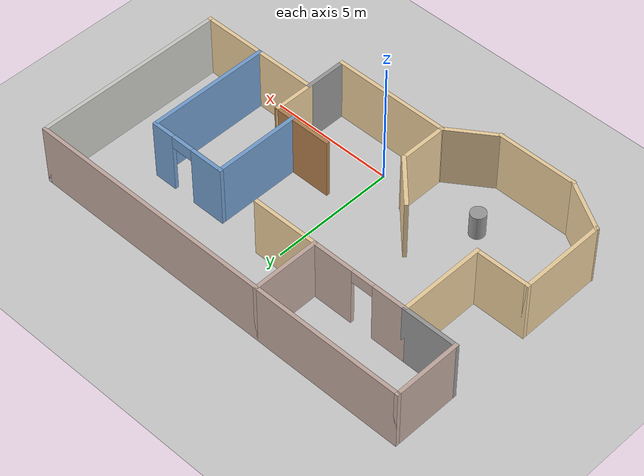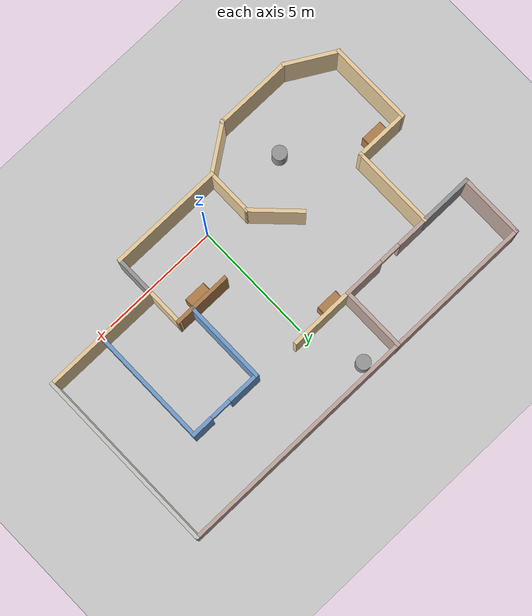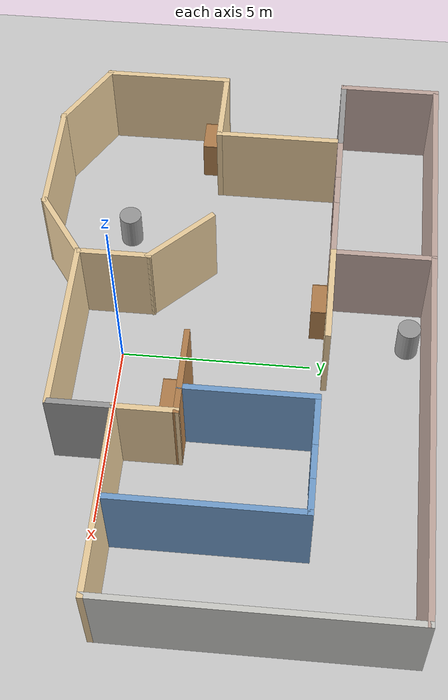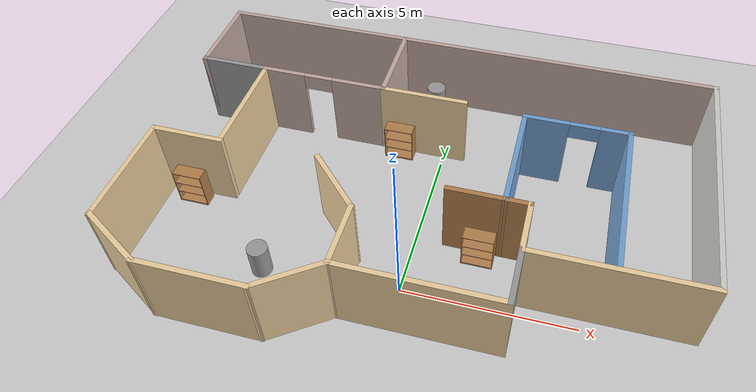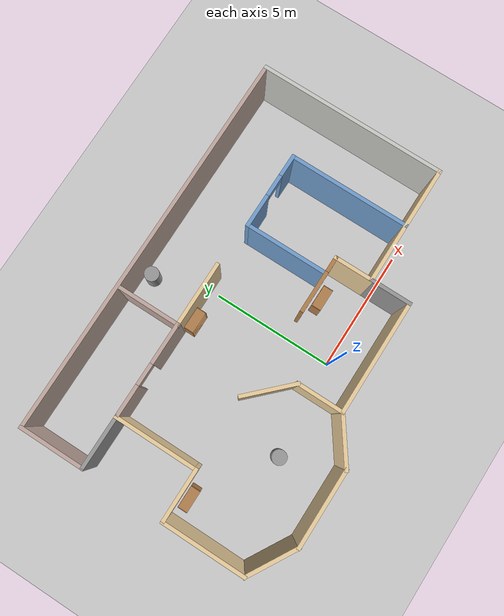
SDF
<sdf version="1.6">
 <world name="default">
  <light name="sun" type="directional">
   <pose>0 0 10 0 -0 0</pose>
   <diffuse>0.8 0.8 0.8 1</diffuse>
   <specular>0.2 0.2 0.2 1</specular>
   <attenuation>
    <range>1000</range>
    <constant>0.9</constant>
    <linear>0.01</linear>
    <quadratic>0.001</quadratic>
   </attenuation>
   <direction>-0.5 0.1 -0.9</direction>
   <spot><inner_angle>0</inner_angle><outer_angle>0</outer_angle><falloff>0</falloff></spot>
  </light>
  <model name="ground_plane">
   <static>1</static>
   <link name="link">
    <collision name="collision">
     <geometry><plane><normal>0 0 1</normal><size>100 100</size></plane></geometry>
     <surface>
      <contact><collide_bitmask>65535</collide_bitmask></contact>
      <friction><ode><mu>100</mu><mu2>50</mu2></ode></friction>
     </surface>
    </collision>
    <visual name="visual">
     <cast_shadows>0</cast_shadows>
     <geometry><plane><normal>0 0 1</normal><size>100 100</size></plane></geometry>
     <material>
      <script><uri>file://media/materials/scripts/gazebo.material</uri><name>Gazebo/Grey</name></script>
     </material>
    </visual>
   </link>
  </model>
  <gravity>0 0 -9.8</gravity>
  <magnetic_field>6e-06 2.3e-05 -4.2e-05</magnetic_field>
  <atmosphere type="adiabatic"/>
  <physics type="ode">
   <max_step_size>0.001</max_step_size>
   <real_time_factor>1</real_time_factor>
   <real_time_update_rate>1000</real_time_update_rate>
  </physics>
  <scene><ambient>0.4 0.4 0.4 1</ambient><background>0.7 0.7 0.7 1</background><shadows>1</shadows></scene>
  <spherical_coordinates>
   <surface_model>EARTH_WGS84</surface_model>
   <latitude_deg>0</latitude_deg>
   <longitude_deg>0</longitude_deg>
   <elevation>0</elevation>
   <heading_deg>0</heading_deg>
  </spherical_coordinates>
  <model name="house_pr3">
   <pose>-0.01373 2.81024 0 0 -0 0</pose>
   <link name="Wall_0">
    <pose>-3.93627 2.58976 0 0 -0 0</pose>
    <visual name="Wall_0_Visual_0">
     <pose>-1.32303 0 1.25 0 -0 0</pose>
     <geometry><box><size>1.40395 0.15 2.5</size></box></geometry>
     <material>
      <script><uri>file://media/materials/scripts/gazebo.material</uri><name>Gazebo/Grey</name></script>
      <ambient>0.760784 0.662745 0.627451 1</ambient>
     </material>
     <meta><layer>0</layer></meta>
    </visual>
    <collision name="Wall_0_Collision_0">
     <geometry><box><size>1.40395 0.15 2.5</size></box></geometry>
     <pose>-1.32303 0 1.25 0 -0 0</pose>
    </collision>
    <visual name="Wall_0_Visual_1">
     <pose>1.15197 0 1.25 0 -0 0</pose>
     <geometry><box><size>1.74605 0.15 2.5</size></box></geometry>
     <material>
      <script><uri>file://media/materials/scripts/gazebo.material</uri><name>Gazebo/Grey</name></script>
      <ambient>0.760784 0.662745 0.627451 1</ambient>
     </material>
     <meta><layer>0</layer></meta>
    </visual>
    <collision name="Wall_0_Collision_1">
     <geometry><box><size>1.74605 0.15 2.5</size></box></geometry>
     <pose>1.15197 0 1.25 0 -0 0</pose>
    </collision>
    <visual name="Wall_0_Visual_2">
     <pose>-0.171053 0 2.25 0 -0 0</pose>
     <geometry><box><size>0.9 0.15 0.5</size></box></geometry>
     <material>
      <script><uri>file://media/materials/scripts/gazebo.material</uri><name>Gazebo/Grey</name></script>
      <ambient>0.760784 0.662745 0.627451 1</ambient>
     </material>
     <meta><layer>0</layer></meta>
    </visual>
    <collision name="Wall_0_Collision_2">
     <geometry><box><size>0.9 0.15 0.5</size></box></geometry>
     <pose>-0.171053 0 2.25 0 -0 0</pose>
    </collision>
   </link>
   <link name="Wall_10">
    <collision name="Wall_10_Collision">
     <geometry><box><size>3.5 0.15 2.5</size></box></geometry>
     <pose>0 0 1.25 0 -0 0</pose>
    </collision>
    <visual name="Wall_10_Visual">
     <pose>0 0 1.25 0 -0 0</pose>
     <geometry><box><size>3.5 0.15 2.5</size></box></geometry>
     <material>
      <script><uri>file://media/materials/scripts/gazebo.material</uri><name>Gazebo/Grey</name></script>
      <ambient>0.921569 0.807843 0.615686 1</ambient>
     </material>
     <meta><layer>0</layer></meta>
    </visual>
    <pose>-7.98627 -2.43524 0 0 -0 -1.5708</pose>
   </link>
   <link name="Wall_11">
    <collision name="Wall_11_Collision">
     <geometry><box><size>2.25 0.15 2.5</size></box></geometry>
     <pose>0 0 1.25 0 -0 0</pose>
    </collision>
    <visual name="Wall_11_Visual">
     <pose>0 0 1.25 0 -0 0</pose>
     <geometry><box><size>2.25 0.15 2.5</size></box></geometry>
     <material>
      <script><uri>file://media/materials/scripts/gazebo.material</uri><name>Gazebo/Grey</name></script>
      <ambient>0.921569 0.807843 0.615686 1</ambient>
     </material>
     <meta><layer>0</layer></meta>
    </visual>
    <pose>-7.07695 -4.63524 0 0 -0 -0.523599</pose>
   </link>
   <link name="Wall_12">
    <collision name="Wall_12_Collision">
     <geometry><box><size>3.25 0.15 2.5</size></box></geometry>
     <pose>0 0 1.25 0 -0 0</pose>
    </collision>
    <visual name="Wall_12_Visual">
     <pose>0 0 1.25 0 -0 0</pose>
     <geometry><box><size>3.25 0.15 2.5</size></box></geometry>
     <material>
      <script><uri>file://media/materials/scripts/gazebo.material</uri><name>Gazebo/Grey</name></script>
      <ambient>0.921569 0.807843 0.615686 1</ambient>
     </material>
     <meta><layer>0</layer></meta>
    </visual>
    <pose>-4.61762 -5.16024 0 0 -0 0</pose>
   </link>
   <link name="Wall_14">
    <collision name="Wall_14_Collision">
     <geometry><box><size>2.75 0.15 2.5</size></box></geometry>
     <pose>0 0 1.25 0 -0 0</pose>
    </collision>
    <visual name="Wall_14_Visual">
     <pose>0 0 1.25 0 -0 0</pose>
     <geometry><box><size>2.75 0.15 2.5</size></box></geometry>
     <material>
      <script><uri>file://media/materials/scripts/gazebo.material</uri><name>Gazebo/Grey</name></script>
      <ambient>0.760784 0.662745 0.627451 1</ambient>
     </material>
     <meta><layer>0</layer></meta>
    </visual>
    <pose>-1.98627 3.88976 0 0 -0 1.5708</pose>
   </link>
   <link name="Wall_16">
    <collision name="Wall_16_Collision">
     <geometry><box><size>7.75 0.15 2.5</size></box></geometry>
     <pose>0 0 1.25 0 -0 0</pose>
    </collision>
    <visual name="Wall_16_Visual">
     <pose>0 0 1.25 0 -0 0</pose>
     <geometry><box><size>7.75 0.15 2.5</size></box></geometry>
     <material>
      <script><uri>file://media/materials/scripts/gazebo.material</uri><name>Gazebo/CeilingTiled</name></script>
      <ambient>1 1 1 1</ambient>
     </material>
     <meta><layer>0</layer></meta>
    </visual>
    <pose>8.01373 1.38976 0 0 -0 -1.5708</pose>
   </link>
   <link name="Wall_17">
    <collision name="Wall_17_Collision">
     <geometry><box><size>5 0.15 2.5</size></box></geometry>
     <pose>0 0 1.25 0 -0 0</pose>
    </collision>
    <visual name="Wall_17_Visual">
     <pose>0 0 1.25 0 -0 0</pose>
     <geometry><box><size>5 0.15 2.5</size></box></geometry>
     <material>
      <script><uri>file://media/materials/scripts/gazebo.material</uri><name>Gazebo/Grey</name></script>
      <ambient>0.921569 0.807843 0.615686 1</ambient>
     </material>
     <meta><layer>0</layer></meta>
    </visual>
    <pose>5.58873 -2.41024 0 0 -0 3.14159</pose>
   </link>
   <link name="Wall_18">
    <collision name="Wall_18_Collision">
     <geometry><box><size>1.75 0.15 2.5</size></box></geometry>
     <pose>0 0 1.25 0 -0 0</pose>
    </collision>
    <visual name="Wall_18_Visual">
     <pose>0 0 1.25 0 -0 0</pose>
     <geometry><box><size>1.75 0.15 2.5</size></box></geometry>
     <material>
      <script><uri>file://media/materials/scripts/gazebo.material</uri><name>Gazebo/Grey</name></script>
      <ambient>1 1 1 1</ambient>
     </material>
     <meta><layer>0</layer></meta>
    </visual>
    <pose>3.16373 -3.21024 0 0 -0 -1.5708</pose>
   </link>
   <link name="Wall_19">
    <collision name="Wall_19_Collision">
     <geometry><box><size>4.75 0.15 2.5</size></box></geometry>
     <pose>0 0 1.25 0 -0 0</pose>
    </collision>
    <visual name="Wall_19_Visual">
     <pose>0 0 1.25 0 -0 0</pose>
     <geometry><box><size>4.75 0.15 2.5</size></box></geometry>
     <material>
      <script><uri>file://media/materials/scripts/gazebo.material</uri><name>Gazebo/Grey</name></script>
      <ambient>0.921569 0.807843 0.615686 1</ambient>
     </material>
     <meta><layer>0</layer></meta>
    </visual>
    <pose>0.863726 -4.01024 0 0 -0 3.14159</pose>
   </link>
   <link name="Wall_2">
    <pose>4.02373 2.45476 0 0 -0 3.14159</pose>
    <visual name="Wall_2_Visual_0">
     <pose>-1.15224 0 1.25 0 -0 0</pose>
     <geometry><box><size>0.94552 0.15 2.5</size></box></geometry>
     <material>
      <script><uri>file://media/materials/scripts/gazebo.material</uri><name>Gazebo/Grey</name></script>
      <ambient>0.447059 0.623529 0.811765 1</ambient>
     </material>
     <meta><layer>0</layer></meta>
    </visual>
    <collision name="Wall_2_Collision_0">
     <geometry><box><size>0.94552 0.15 2.5</size></box></geometry>
     <pose>-1.15224 0 1.25 0 -0 0</pose>
    </collision>
    <visual name="Wall_2_Visual_1">
     <pose>0.92276 0 1.25 0 -0 0</pose>
     <geometry><box><size>1.40448 0.15 2.5</size></box></geometry>
     <material>
      <script><uri>file://media/materials/scripts/gazebo.material</uri><name>Gazebo/Grey</name></script>
      <ambient>0.447059 0.623529 0.811765 1</ambient>
     </material>
     <meta><layer>0</layer></meta>
    </visual>
    <collision name="Wall_2_Collision_1">
     <geometry><box><size>1.40448 0.15 2.5</size></box></geometry>
     <pose>0.92276 0 1.25 0 -0 0</pose>
    </collision>
    <visual name="Wall_2_Visual_2">
     <pose>-0.22948 0 2.25 0 -0 0</pose>
     <geometry><box><size>0.9 0.15 0.5</size></box></geometry>
     <material>
      <script><uri>file://media/materials/scripts/gazebo.material</uri><name>Gazebo/Grey</name></script>
      <ambient>0.447059 0.623529 0.811765 1</ambient>
     </material>
     <meta><layer>0</layer></meta>
    </visual>
    <collision name="Wall_2_Collision_2">
     <geometry><box><size>0.9 0.15 0.5</size></box></geometry>
     <pose>-0.22948 0 2.25 0 -0 0</pose>
    </collision>
   </link>
   <link name="Wall_20">
    <collision name="Wall_20_Collision">
     <geometry><box><size>2.14594 0.15 2.5</size></box></geometry>
     <pose>0 0 1.25 0 -0 0</pose>
    </collision>
    <visual name="Wall_20_Visual">
     <pose>0 0 1.25 0 -0 0</pose>
     <geometry><box><size>2.14594 0.15 2.5</size></box></geometry>
     <material>
      <script><uri>file://media/materials/scripts/gazebo.material</uri><name>Gazebo/Grey</name></script>
      <ambient>0.921569 0.807843 0.615686 1</ambient>
     </material>
     <meta><layer>0</layer></meta>
    </visual>
    <pose>-2.25195 -4.58524 0 0 -0 -2.52756</pose>
   </link>
   <link name="Wall_22">
    <collision name="Wall_22_Collision">
     <geometry><box><size>2 0.15 2.5</size></box></geometry>
     <pose>0 0 1.25 0 -0 0</pose>
    </collision>
    <visual name="Wall_22_Visual">
     <pose>0 0 1.25 0 -0 0</pose>
     <geometry><box><size>2 0.15 2.5</size></box></geometry>
     <material>
      <script><uri>file://media/materials/scripts/gazebo.material</uri><name>Gazebo/Grey</name></script>
      <ambient>0.921569 0.807843 0.615686 1</ambient>
     </material>
     <meta><layer>0</layer></meta>
    </visual>
    <pose>-1.43627 -3.08524 0 0 -0 1.5708</pose>
   </link>
   <link name="Wall_23">
    <collision name="Wall_23_Collision">
     <geometry><box><size>2.25 0.15 2.5</size></box></geometry>
     <pose>0 0 1.25 0 -0 0</pose>
    </collision>
    <visual name="Wall_23_Visual">
     <pose>0 0 1.25 0 -0 0</pose>
     <geometry><box><size>2.25 0.15 2.5</size></box></geometry>
     <material>
      <script><uri>file://media/materials/scripts/gazebo.material</uri><name>Gazebo/Grey</name></script>
      <ambient>0.921569 0.807843 0.615686 1</ambient>
     </material>
     <meta><layer>0</layer></meta>
    </visual>
    <pose>-2.17874 -1.41778 0 0 -0 2.35619</pose>
   </link>
   <link name="Wall_25">
    <collision name="Wall_25_Collision">
     <geometry><box><size>5 0.15 2.5</size></box></geometry>
     <pose>0 0 1.25 0 -0 0</pose>
    </collision>
    <visual name="Wall_25_Visual">
     <pose>0 0 1.25 0 -0 0</pose>
     <geometry><box><size>5 0.15 2.5</size></box></geometry>
     <material>
      <script><uri>file://media/materials/scripts/gazebo.material</uri><name>Gazebo/Grey</name></script>
      <ambient>0.447059 0.623529 0.811765 1</ambient>
     </material>
     <meta><layer>0</layer></meta>
    </visual>
    <pose>5.5739 0.029376 0 0 -0 1.5708</pose>
   </link>
   <link name="Wall_27">
    <collision name="Wall_27_Collision">
     <geometry><box><size>3.5 0.15 2.5</size></box></geometry>
     <pose>0 0 1.25 0 -0 0</pose>
    </collision>
    <visual name="Wall_27_Visual">
     <pose>0 0 1.25 0 -0 0</pose>
     <geometry><box><size>3.5 0.15 2.5</size></box></geometry>
     <material>
      <script><uri>file://media/materials/scripts/gazebo.material</uri><name>Gazebo/Grey</name></script>
      <ambient>0.447059 0.623529 0.811765 1</ambient>
     </material>
     <meta><layer>0</layer></meta>
    </visual>
    <pose>2.4739 0.779376 0 0 -0 -1.5708</pose>
   </link>
   <link name="Wall_28">
    <collision name="Wall_28_Collision">
     <geometry><box><size>0.839822 0.15 2.5</size></box></geometry>
     <pose>0 0 1.25 0 -0 0</pose>
    </collision>
    <visual name="Wall_28_Visual">
     <pose>0 0 1.25 0 -0 0</pose>
     <geometry><box><size>0.839822 0.15 2.5</size></box></geometry>
     <material>
      <script><uri>file://media/materials/scripts/gazebo.material</uri><name>Gazebo/Wood</name></script>
      <ambient>0.921569 0.807843 0.615686 1</ambient>
     </material>
     <meta><layer>0</layer></meta>
    </visual>
    <pose>2.81881 -0.895434 0 0 -0 0.000551</pose>
   </link>
   <link name="Wall_29">
    <collision name="Wall_29_Collision">
     <geometry><box><size>1.665 0.15 2.5</size></box></geometry>
     <pose>0 0 1.25 0 -0 0</pose>
    </collision>
    <visual name="Wall_29_Visual">
     <pose>0 0 1.25 0 -0 0</pose>
     <geometry><box><size>1.665 0.15 2.5</size></box></geometry>
     <material>
      <script><uri>file://media/materials/scripts/gazebo.material</uri><name>Gazebo/Grey</name></script>
      <ambient>0.921569 0.807843 0.615686 1</ambient>
     </material>
     <meta><layer>0</layer></meta>
    </visual>
    <pose>3.16373 -1.65274 0 0 -0 -1.5708</pose>
   </link>
   <link name="Wall_31">
    <collision name="Wall_31_Collision">
     <geometry><box><size>2.75 0.15 2.5</size></box></geometry>
     <pose>0 0 1.25 0 -0 0</pose>
    </collision>
    <visual name="Wall_31_Visual">
     <pose>0 0 1.25 0 -0 0</pose>
     <geometry><box><size>2.75 0.15 2.5</size></box></geometry>
     <material>
      <script><uri>file://media/materials/scripts/gazebo.material</uri><name>Gazebo/Grey</name></script>
      <ambient>0.921569 0.807843 0.615686 1</ambient>
     </material>
     <meta><layer>0</layer></meta>
    </visual>
    <pose>-0.686274 2.58976 0 0 -0 0</pose>
   </link>
   <link name="Wall_33">
    <collision name="Wall_33_Collision">
     <geometry><box><size>1.75 0.15 2.5</size></box></geometry>
     <pose>0 0 1.25 0 -0 0</pose>
    </collision>
    <visual name="Wall_33_Visual">
     <pose>0 0 1.25 0 -0 0</pose>
     <geometry><box><size>1.75 0.15 2.5</size></box></geometry>
     <material>
      <script><uri>file://media/materials/scripts/gazebo.material</uri><name>Gazebo/Wood</name></script>
      <ambient>0.921569 0.807843 0.615686 1</ambient>
     </material>
     <meta><layer>0</layer></meta>
    </visual>
    <pose>1.6739 -0.895624 0 0 -0 3.14159</pose>
   </link>
   <link name="Wall_4">
    <collision name="Wall_4_Collision">
     <geometry><box><size>16.15 0.15 2.5</size></box></geometry>
     <pose>0 0 1.25 0 -0 0</pose>
    </collision>
    <visual name="Wall_4_Visual">
     <pose>0 0 1.25 0 -0 0</pose>
     <geometry><box><size>16.15 0.15 2.5</size></box></geometry>
     <material>
      <script><uri>file://media/materials/scripts/gazebo.material</uri><name>Gazebo/Grey</name></script>
      <ambient>0.760784 0.662745 0.627451 1</ambient>
     </material>
     <meta><layer>0</layer></meta>
    </visual>
    <pose>0.013726 5.18976 0 0 -0 0</pose>
   </link>
   <link name="Wall_6">
    <collision name="Wall_6_Collision">
     <geometry><box><size>2.75 0.15 2.5</size></box></geometry>
     <pose>0 0 1.25 0 -0 0</pose>
    </collision>
    <visual name="Wall_6_Visual">
     <pose>0 0 1.25 0 -0 0</pose>
     <geometry><box><size>2.75 0.15 2.5</size></box></geometry>
     <material>
      <script><uri>file://media/materials/scripts/gazebo.material</uri><name>Gazebo/Grey</name></script>
      <ambient>0.760784 0.662745 0.627451 1</ambient>
     </material>
     <meta><layer>0</layer></meta>
    </visual>
    <pose>-7.98627 3.88976 0 0 -0 -1.5708</pose>
   </link>
   <link name="Wall_7">
    <collision name="Wall_7_Collision">
     <geometry><box><size>2.2503 0.15 2.5</size></box></geometry>
     <pose>0 0 1.25 0 -0 0</pose>
    </collision>
    <visual name="Wall_7_Visual">
     <pose>0 0 1.25 0 -0 0</pose>
     <geometry><box><size>2.2503 0.15 2.5</size></box></geometry>
     <material>
      <script><uri>file://media/materials/scripts/gazebo.material</uri><name>Gazebo/Grey</name></script>
      <ambient>1 1 1 1</ambient>
     </material>
     <meta><layer>0</layer></meta>
    </visual>
    <pose>-6.93627 2.58976 0 0 -0 0</pose>
   </link>
   <link name="Wall_8">
    <collision name="Wall_8_Collision">
     <geometry><box><size>3.5 0.15 2.5</size></box></geometry>
     <pose>0 0 1.25 0 -0 0</pose>
    </collision>
    <visual name="Wall_8_Visual">
     <pose>0 0 1.25 0 -0 0</pose>
     <geometry><box><size>3.5 0.15 2.5</size></box></geometry>
     <material>
      <script><uri>file://media/materials/scripts/gazebo.material</uri><name>Gazebo/Grey</name></script>
      <ambient>0.921569 0.807843 0.615686 1</ambient>
     </material>
     <meta><layer>0</layer></meta>
    </visual>
    <pose>-5.88627 0.914756 0 0 -0 -1.5708</pose>
   </link>
   <link name="Wall_9">
    <collision name="Wall_9_Collision">
     <geometry><box><size>2.25 0.15 2.5</size></box></geometry>
     <pose>0 0 1.25 0 -0 0</pose>
    </collision>
    <visual name="Wall_9_Visual">
     <pose>0 0 1.25 0 -0 0</pose>
     <geometry><box><size>2.25 0.15 2.5</size></box></geometry>
     <material>
      <script><uri>file://media/materials/scripts/gazebo.material</uri><name>Gazebo/Grey</name></script>
      <ambient>0.921569 0.807843 0.615686 1</ambient>
     </material>
     <meta><layer>0</layer></meta>
    </visual>
    <pose>-6.93627 -0.760244 0 0 -0 3.14159</pose>
   </link>
   <static>1</static>
  </model>
  <model name="bookshelf">
   <static>1</static>
   <link name="link">
    <inertial><mass>1</mass></inertial>
    <collision name="back">
     <pose>0 0.005 0.6 0 -0 0</pose>
     <geometry><box><size>0.9 0.01 1.2</size></box></geometry>
    </collision>
    <visual name="visual1">
     <pose>0 0.005 0.6 0 -0 0</pose>
     <geometry><box><size>0.9 0.01 1.2</size></box></geometry>
     <material>
      <script><uri>file://media/materials/scripts/gazebo.material</uri><name>Gazebo/Wood</name></script>
     </material>
    </visual>
    <collision name="left_side">
     <pose>0.45 -0.195 0.6 0 -0 0</pose>
     <geometry><box><size>0.02 0.4 1.2</size></box></geometry>
    </collision>
    <visual name="visual2">
     <pose>0.45 -0.195 0.6 0 -0 0</pose>
     <geometry><box><size>0.02 0.4 1.2</size></box></geometry>
     <material>
      <script><uri>file://media/materials/scripts/gazebo.material</uri><name>Gazebo/Wood</name></script>
     </material>
    </visual>
    <collision name="right_side">
     <pose>-0.45 -0.195 0.6 0 -0 0</pose>
     <geometry><box><size>0.02 0.4 1.2</size></box></geometry>
    </collision>
    <visual name="visual3">
     <pose>-0.45 -0.195 0.6 0 -0 0</pose>
     <geometry><box><size>0.02 0.4 1.2</size></box></geometry>
     <material>
      <script><uri>file://media/materials/scripts/gazebo.material</uri><name>Gazebo/Wood</name></script>
     </material>
    </visual>
    <collision name="bottom">
     <pose>0 -0.195 0.03 0 -0 0</pose>
     <geometry><box><size>0.88 0.4 0.06</size></box></geometry>
    </collision>
    <visual name="visual4">
     <pose>0 -0.195 0.03 0 -0 0</pose>
     <geometry><box><size>0.88 0.4 0.06</size></box></geometry>
     <material>
      <script><uri>file://media/materials/scripts/gazebo.material</uri><name>Gazebo/Wood</name></script>
     </material>
    </visual>
    <collision name="top">
     <pose>0 -0.195 1.19 0 -0 0</pose>
     <geometry><box><size>0.88 0.4 0.02</size></box></geometry>
    </collision>
    <visual name="visual5">
     <pose>0 -0.195 1.19 0 -0 0</pose>
     <geometry><box><size>0.88 0.4 0.02</size></box></geometry>
     <material>
      <script><uri>file://media/materials/scripts/gazebo.material</uri><name>Gazebo/Wood</name></script>
     </material>
    </visual>
    <collision name="low_shelf">
     <pose>0 -0.195 0.43 0 -0 0</pose>
     <geometry><box><size>0.88 0.4 0.02</size></box></geometry>
    </collision>
    <visual name="visual6">
     <pose>0 -0.195 0.43 0 -0 0</pose>
     <geometry><box><size>0.88 0.4 0.02</size></box></geometry>
     <material>
      <script><uri>file://media/materials/scripts/gazebo.material</uri><name>Gazebo/Wood</name></script>
     </material>
    </visual>
    <collision name="high_shelf">
     <pose>0 -0.195 0.8 0 -0 0</pose>
     <geometry><box><size>0.88 0.4 0.02</size></box></geometry>
    </collision>
    <visual name="visual7">
     <pose>0 -0.195 0.8 0 -0 0</pose>
     <geometry><box><size>0.88 0.4 0.02</size></box></geometry>
     <material>
      <script><uri>file://media/materials/scripts/gazebo.material</uri><name>Gazebo/Wood</name></script>
     </material>
    </visual>
   </link>
   <pose>1.90228 1.73392 0 0 -0 0</pose>
  </model>
  <model name="bookshelf_0">
   <static>1</static>
   <link name="link">
    <inertial><mass>1</mass></inertial>
    <collision name="back">
     <pose>0 0.005 0.6 0 -0 0</pose>
     <geometry><box><size>0.9 0.01 1.2</size></box></geometry>
    </collision>
    <visual name="visual1">
     <pose>0 0.005 0.6 0 -0 0</pose>
     <geometry><box><size>0.9 0.01 1.2</size></box></geometry>
     <material>
      <script><uri>file://media/materials/scripts/gazebo.material</uri><name>Gazebo/Wood</name></script>
     </material>
    </visual>
    <collision name="left_side">
     <pose>0.45 -0.195 0.6 0 -0 0</pose>
     <geometry><box><size>0.02 0.4 1.2</size></box></geometry>
    </collision>
    <visual name="visual2">
     <pose>0.45 -0.195 0.6 0 -0 0</pose>
     <geometry><box><size>0.02 0.4 1.2</size></box></geometry>
     <material>
      <script><uri>file://media/materials/scripts/gazebo.material</uri><name>Gazebo/Wood</name></script>
     </material>
    </visual>
    <collision name="right_side">
     <pose>-0.45 -0.195 0.6 0 -0 0</pose>
     <geometry><box><size>0.02 0.4 1.2</size></box></geometry>
    </collision>
    <visual name="visual3">
     <pose>-0.45 -0.195 0.6 0 -0 0</pose>
     <geometry><box><size>0.02 0.4 1.2</size></box></geometry>
     <material>
      <script><uri>file://media/materials/scripts/gazebo.material</uri><name>Gazebo/Wood</name></script>
     </material>
    </visual>
    <collision name="bottom">
     <pose>0 -0.195 0.03 0 -0 0</pose>
     <geometry><box><size>0.88 0.4 0.06</size></box></geometry>
    </collision>
    <visual name="visual4">
     <pose>0 -0.195 0.03 0 -0 0</pose>
     <geometry><box><size>0.88 0.4 0.06</size></box></geometry>
     <material>
      <script><uri>file://media/materials/scripts/gazebo.material</uri><name>Gazebo/Wood</name></script>
     </material>
    </visual>
    <collision name="top">
     <pose>0 -0.195 1.19 0 -0 0</pose>
     <geometry><box><size>0.88 0.4 0.02</size></box></geometry>
    </collision>
    <visual name="visual5">
     <pose>0 -0.195 1.19 0 -0 0</pose>
     <geometry><box><size>0.88 0.4 0.02</size></box></geometry>
     <material>
      <script><uri>file://media/materials/scripts/gazebo.material</uri><name>Gazebo/Wood</name></script>
     </material>
    </visual>
    <collision name="low_shelf">
     <pose>0 -0.195 0.43 0 -0 0</pose>
     <geometry><box><size>0.88 0.4 0.02</size></box></geometry>
    </collision>
    <visual name="visual6">
     <pose>0 -0.195 0.43 0 -0 0</pose>
     <geometry><box><size>0.88 0.4 0.02</size></box></geometry>
     <material>
      <script><uri>file://media/materials/scripts/gazebo.material</uri><name>Gazebo/Wood</name></script>
     </material>
    </visual>
    <collision name="high_shelf">
     <pose>0 -0.195 0.8 0 -0 0</pose>
     <geometry><box><size>0.88 0.4 0.02</size></box></geometry>
    </collision>
    <visual name="visual7">
     <pose>0 -0.195 0.8 0 -0 0</pose>
     <geometry><box><size>0.88 0.4 0.02</size></box></geometry>
     <material>
      <script><uri>file://media/materials/scripts/gazebo.material</uri><name>Gazebo/Wood</name></script>
     </material>
    </visual>
   </link>
   <pose>-7.02738 1.88752 0 0 -0 0</pose>
  </model>
  <model name="unit_cylinder">
   <link name="link">
    <inertial>
     <mass>1</mass>
     <inertia><ixx>0.145833</ixx><ixy>0</ixy><ixz>0</ixz><iyy>0.145833</iyy><iyz>0</iyz><izz>0.125</izz></inertia>
    </inertial>
    <visual name="visual">
     <geometry><cylinder><radius>0.3</radius><length>1</length></cylinder></geometry>
     <material>
      <script><name>Gazebo/Grey</name><uri>file://media/materials/scripts/gazebo.material</uri></script>
      <shader type="pixel"><normal_map>__default__</normal_map></shader>
      <ambient>0.3 0.3 0.3 1</ambient>
      <diffuse>0.7 0.7 0.7 1</diffuse>
      <specular>0.01 0.01 0.01 1</specular>
      <emissive>0 0 0 1</emissive>
     </material>
    </visual>
    <collision name="collision">
     <geometry><cylinder><radius>0.3</radius><length>1</length></cylinder></geometry>
     <surface>
      <friction>
       <ode><mu>1</mu><mu2>1</mu2><fdir1>0 0 0</fdir1><slip1>0</slip1><slip2>0</slip2></ode>
       <torsional>
        <coefficient>1</coefficient>
        <patch_radius>0</patch_radius>
        <surface_radius>0</surface_radius>
        <use_patch_radius>1</use_patch_radius>
        <ode><slip>0</slip></ode>
       </torsional>
      </friction>
      <bounce><restitution_coefficient>0</restitution_coefficient><threshold>1e+06</threshold></bounce>
      <contact>
       <collide_without_contact>0</collide_without_contact>
       <collide_without_contact_bitmask>1</collide_without_contact_bitmask>
       <collide_bitmask>1</collide_bitmask>
       <ode>
        <soft_cfm>0</soft_cfm>
        <soft_erp>0.2</soft_erp>
        <kp>1e+13</kp>
        <kd>1</kd>
        <max_vel>0.01</max_vel>
        <min_depth>0</min_depth>
       </ode>
       <bullet>
        <split_impulse>1</split_impulse>
        <split_impulse_penetration_threshold>-0.01</split_impulse_penetration_threshold>
        <soft_cfm>0</soft_cfm>
        <soft_erp>0.2</soft_erp>
        <kp>1e+13</kp>
        <kd>1</kd>
       </bullet>
      </contact>
     </surface>
    </collision>
   </link>
   <static>0</static>
   <pose>-3.99044 -0.280331 0.499998 -1e-06 -1e-06 0</pose>
  </model>
  <model name="unit_cylinder_clone">
   <link name="link">
    <inertial>
     <mass>1</mass>
     <inertia><ixx>0.145833</ixx><ixy>0</ixy><ixz>0</ixz><iyy>0.145833</iyy><iyz>0</iyz><izz>0.125</izz></inertia>
    </inertial>
    <visual name="visual">
     <geometry><cylinder><radius>0.3</radius><length>1</length></cylinder></geometry>
     <material>
      <script><name>Gazebo/Grey</name><uri>file://media/materials/scripts/gazebo.material</uri></script>
      <shader type="pixel"><normal_map>__default__</normal_map></shader>
      <ambient>0.3 0.3 0.3 1</ambient>
      <diffuse>0.7 0.7 0.7 1</diffuse>
      <specular>0.01 0.01 0.01 1</specular>
      <emissive>0 0 0 1</emissive>
     </material>
    </visual>
    <collision name="collision">
     <geometry><cylinder><radius>0.3</radius><length>1</length></cylinder></geometry>
     <surface>
      <friction>
       <ode><mu>1</mu><mu2>1</mu2><fdir1>0 0 0</fdir1><slip1>0</slip1><slip2>0</slip2></ode>
       <torsional>
        <coefficient>1</coefficient>
        <patch_radius>0</patch_radius>
        <surface_radius>0</surface_radius>
        <use_patch_radius>1</use_patch_radius>
        <ode><slip>0</slip></ode>
       </torsional>
      </friction>
      <bounce><restitution_coefficient>0</restitution_coefficient><threshold>1e+06</threshold></bounce>
      <contact>
       <collide_without_contact>0</collide_without_contact>
       <collide_without_contact_bitmask>1</collide_without_contact_bitmask>
       <collide_bitmask>1</collide_bitmask>
       <ode>
        <soft_cfm>0</soft_cfm>
        <soft_erp>0.2</soft_erp>
        <kp>1e+13</kp>
        <kd>1</kd>
        <max_vel>0.01</max_vel>
        <min_depth>0</min_depth>
       </ode>
       <bullet>
        <split_impulse>1</split_impulse>
        <split_impulse_penetration_threshold>-0.01</split_impulse_penetration_threshold>
        <soft_cfm>0</soft_cfm>
        <soft_erp>0.2</soft_erp>
        <kp>1e+13</kp>
        <kd>1</kd>
       </bullet>
      </contact>
     </surface>
    </collision>
   </link>
   <static>0</static>
   <pose>-0.796748 7.53366 0.499998 -1e-06 -1e-06 0</pose>
  </model>
  <model name="bookshelf_1">
   <static>1</static>
   <link name="link">
    <inertial><mass>1</mass></inertial>
    <collision name="back">
     <pose>0 0.005 0.6 0 -0 0</pose>
     <geometry><box><size>0.9 0.01 1.2</size></box></geometry>
    </collision>
    <visual name="visual1">
     <pose>0 0.005 0.6 0 -0 0</pose>
     <geometry><box><size>0.9 0.01 1.2</size></box></geometry>
     <material>
      <script><uri>file://media/materials/scripts/gazebo.material</uri><name>Gazebo/Wood</name></script>
     </material>
    </visual>
    <collision name="left_side">
     <pose>0.45 -0.195 0.6 0 -0 0</pose>
     <geometry><box><size>0.02 0.4 1.2</size></box></geometry>
    </collision>
    <visual name="visual2">
     <pose>0.45 -0.195 0.6 0 -0 0</pose>
     <geometry><box><size>0.02 0.4 1.2</size></box></geometry>
     <material>
      <script><uri>file://media/materials/scripts/gazebo.material</uri><name>Gazebo/Wood</name></script>
     </material>
    </visual>
    <collision name="right_side">
     <pose>-0.45 -0.195 0.6 0 -0 0</pose>
     <geometry><box><size>0.02 0.4 1.2</size></box></geometry>
    </collision>
    <visual name="visual3">
     <pose>-0.45 -0.195 0.6 0 -0 0</pose>
     <geometry><box><size>0.02 0.4 1.2</size></box></geometry>
     <material>
      <script><uri>file://media/materials/scripts/gazebo.material</uri><name>Gazebo/Wood</name></script>
     </material>
    </visual>
    <collision name="bottom">
     <pose>0 -0.195 0.03 0 -0 0</pose>
     <geometry><box><size>0.88 0.4 0.06</size></box></geometry>
    </collision>
    <visual name="visual4">
     <pose>0 -0.195 0.03 0 -0 0</pose>
     <geometry><box><size>0.88 0.4 0.06</size></box></geometry>
     <material>
      <script><uri>file://media/materials/scripts/gazebo.material</uri><name>Gazebo/Wood</name></script>
     </material>
    </visual>
    <collision name="top">
     <pose>0 -0.195 1.19 0 -0 0</pose>
     <geometry><box><size>0.88 0.4 0.02</size></box></geometry>
    </collision>
    <visual name="visual5">
     <pose>0 -0.195 1.19 0 -0 0</pose>
     <geometry><box><size>0.88 0.4 0.02</size></box></geometry>
     <material>
      <script><uri>file://media/materials/scripts/gazebo.material</uri><name>Gazebo/Wood</name></script>
     </material>
    </visual>
    <collision name="low_shelf">
     <pose>0 -0.195 0.43 0 -0 0</pose>
     <geometry><box><size>0.88 0.4 0.02</size></box></geometry>
    </collision>
    <visual name="visual6">
     <pose>0 -0.195 0.43 0 -0 0</pose>
     <geometry><box><size>0.88 0.4 0.02</size></box></geometry>
     <material>
      <script><uri>file://media/materials/scripts/gazebo.material</uri><name>Gazebo/Wood</name></script>
     </material>
    </visual>
    <collision name="high_shelf">
     <pose>0 -0.195 0.8 0 -0 0</pose>
     <geometry><box><size>0.88 0.4 0.02</size></box></geometry>
    </collision>
    <visual name="visual7">
     <pose>0 -0.195 0.8 0 -0 0</pose>
     <geometry><box><size>0.88 0.4 0.02</size></box></geometry>
     <material>
      <script><uri>file://media/materials/scripts/gazebo.material</uri><name>Gazebo/Wood</name></script>
     </material>
    </visual>
   </link>
   <pose>-1.41624 5.31718 0 0 -0 0</pose>
  </model>
 </world>
</sdf>
